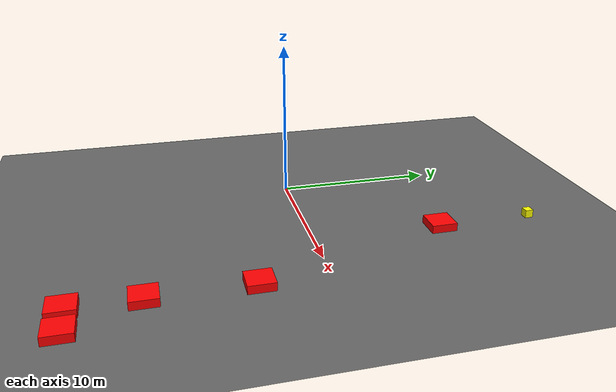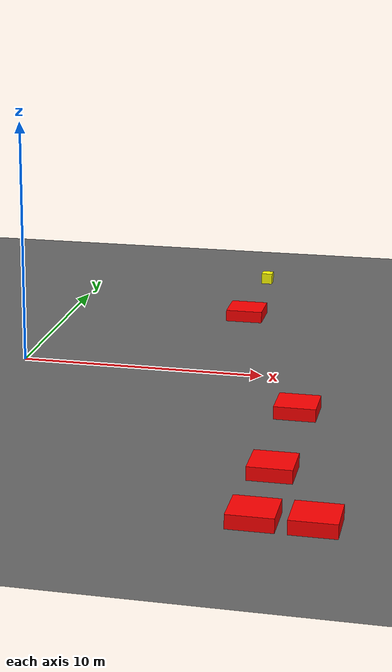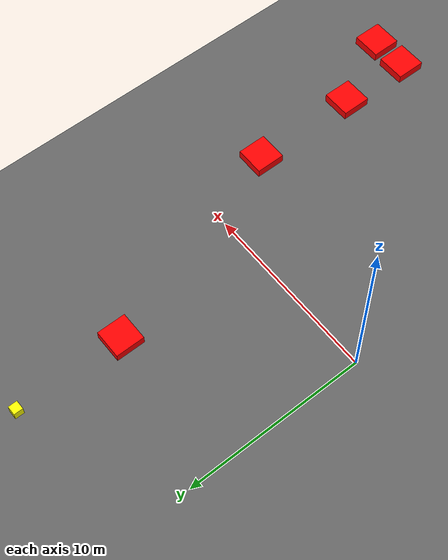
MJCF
<mujoco model="lvl3_standard_obs5_d15_seed2">
    <compiler angle="degree" coordinate="local" inertiafromgeom="true"/>
    <option integrator="RK4" timestep="0.01"/>

    <asset>
        <texture builtin="gradient" height="100" rgb1="0.6 0.8 1" rgb2="0 0 0" type="skybox" width="100"/>
        <texture name="floor_texture" type="2d" builtin="checker" width="100" height="100" rgb1="0 0 0" rgb2="0.8 0.8 0.8"/>
        <material name="MatPlane" reflectance="0.5" shininess="1" specular="1" texrepeat="10 10" texture="floor_texture"/>
    </asset>

    <!-- Excluding the contact between the agent and the goal, and the agent and the floor -->
    <contact>
        <exclude body1="agent" body2="goal"/>
        <exclude body1 = "agent" body2 = "floor"/>
    </contact>

    <extension>
        <plugin plugin = "mujoco.pid">
            <instance name = "pid1">
                <config key="kp" value="2"/>
                <config key="ki" value="0"/>
                <config key="kd" value="55"/>
            </instance>
        </plugin>
    </extension>

    <worldbody>
        <light cutoff="100" diffuse="1 1 1" dir="-0 0 -1.3" directional="true" exponent="1" pos="0 0 1.3" specular=".1 .1 .1"/>
        <body name="floor" pos="0 0 0">
            <geom name="floor_geom" type="plane" size="20 20 0.1" material="MatPlane"/>
        </body>

                <body name="goal" pos="12.0000 -12.0000 0">
            <geom name="goal_geom" type="plane" size="0.5 0.5 1" pos="0 0 0" rgba="1 0 0 1"/>
        </body>

                <body name="agent" pos="8.0000 14.0000 0.250">
            <joint name="j1" type="slide" axis ="1 0 0 "/>
            <joint name="j2" type="slide" axis ="0 1 0 "/>
            <geom name="agent_geom" type="box" size="0.25 0.25 0.250" rgba="1 1 0 1"/>
        </body>

        <body name="ob_3_11" pos="8.0000 8.0000 0.250">  <geom type="box" size="0.8000 0.8000 0.250"         rgba="1 0 0 1" contype="1" conaffinity="1"/></body>
        <body name="ob_9_13" pos="12.0000 -4.0000 0.250">  <geom type="box" size="0.8000 0.8000 0.250"         rgba="1 0 0 1" contype="1" conaffinity="1"/></body>
        <body name="ob_12_13" pos="12.0000 -10.0000 0.250">  <geom type="box" size="0.8000 0.8000 0.250"         rgba="1 0 0 1" contype="1" conaffinity="1"/></body>
        <body name="ob_14_13" pos="12.0000 -14.0000 0.250">  <geom type="box" size="0.8000 0.8000 0.250"         rgba="1 0 0 1" contype="1" conaffinity="1"/></body>
        <body name="ob_14_14" pos="14.0000 -14.0000 0.250">  <geom type="box" size="0.8000 0.8000 0.250"         rgba="1 0 0 1" contype="1" conaffinity="1"/></body>

    </worldbody>

    <sensor>
<!-- SENSORS -->
    </sensor>

    <actuator>
        <plugin joint="j1" plugin="mujoco.pid" instance="pid1" />
        <plugin joint="j2" plugin="mujoco.pid" instance="pid1"/>
    </actuator>
</mujoco>
